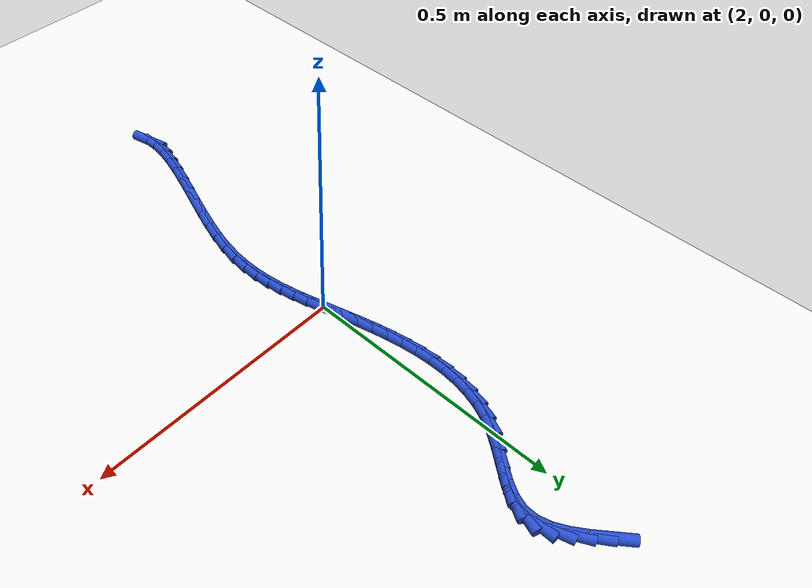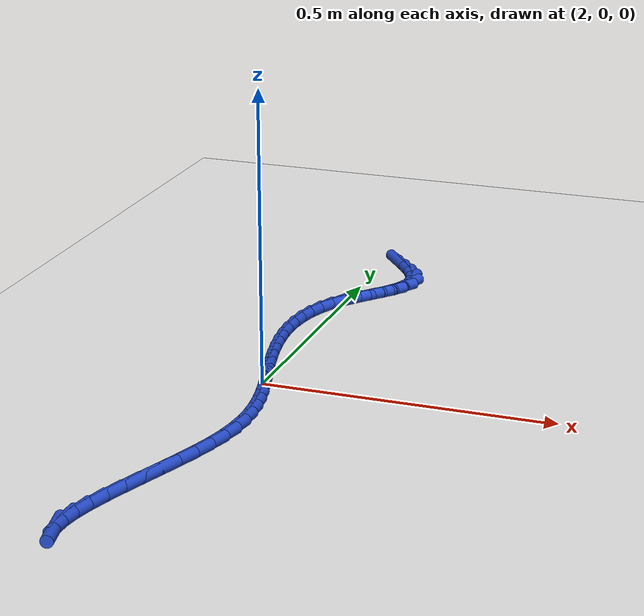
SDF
<sdf version="1.6">
 <world name="default">
  <model name="ground_plane">
   <static>1</static>
   <link name="link">
    <collision name="collision">
     <geometry><plane><normal>0 0 1</normal><size>100 100</size></plane></geometry>
     <surface><friction><ode><mu>100</mu><mu2>50</mu2></ode></friction></surface>
    </collision>
    <visual name="visual">
     <cast_shadows>0</cast_shadows>
     <geometry><plane><normal>0 0 1</normal><size>100 100</size></plane></geometry>
     <material>
      <script><uri>file://media/materials/scripts/gazebo.material</uri><name>Gazebo/WhiteGlow</name></script>
     </material>
    </visual>
   </link>
  </model>
  <model name="line">
   <link name="link_105">
    <pose>2.029555868944978 0.6349782605247166 0.01 0 1.57 -0.9045945338259855</pose>
    <collision name="collision">
     <geometry><cylinder><radius>0.01</radius><length>0.08</length></cylinder></geometry>
    </collision>
    <visual name="visual">
     <material>
      <script><name>Gazebo/Blue</name><uri>file://media/materials/scripts/gazebo.material</uri></script>
     </material>
     <geometry><cylinder><radius>0.01</radius><length>0.08</length></cylinder></geometry>
    </visual>
   </link>
   <link name="link_106">
    <pose>2.049239063145035 0.6099389110316651 0.01 0 1.57 -0.9684501212486784</pose>
    <collision name="collision">
     <geometry><cylinder><radius>0.01</radius><length>0.08</length></cylinder></geometry>
    </collision>
    <visual name="visual">
     <material>
      <script><name>Gazebo/Blue</name><uri>file://media/materials/scripts/gazebo.material</uri></script>
     </material>
     <geometry><cylinder><radius>0.01</radius><length>0.08</length></cylinder></geometry>
    </visual>
   </link>
   <link name="link_107">
    <pose>2.066205257287729 0.5852639215975498 0.01 0 1.57 -1.0895288656745026</pose>
    <collision name="collision">
     <geometry><cylinder><radius>0.01</radius><length>0.08</length></cylinder></geometry>
    </collision>
    <visual name="visual">
     <material>
      <script><name>Gazebo/Blue</name><uri>file://media/materials/scripts/gazebo.material</uri></script>
     </material>
     <geometry><cylinder><radius>0.01</radius><length>0.08</length></cylinder></geometry>
    </visual>
   </link>
   <link name="link_108">
    <pose>2.0789110827623545 0.5609336489370904 0.01 0 1.57 -1.2908236707135303</pose>
    <collision name="collision">
     <geometry><cylinder><radius>0.01</radius><length>0.08</length></cylinder></geometry>
    </collision>
    <visual name="visual">
     <material>
      <script><name>Gazebo/Blue</name><uri>file://media/materials/scripts/gazebo.material</uri></script>
     </material>
     <geometry><cylinder><radius>0.01</radius><length>0.08</length></cylinder></geometry>
    </visual>
   </link>
   <link name="link_109">
    <pose>2.085813170958205 0.5369284497650043 0.01 0 1.57 1.5520579601541524</pose>
    <collision name="collision">
     <geometry><cylinder><radius>0.01</radius><length>0.08</length></cylinder></geometry>
    </collision>
    <visual name="visual">
     <material>
      <script><name>Gazebo/Blue</name><uri>file://media/materials/scripts/gazebo.material</uri></script>
     </material>
     <geometry><cylinder><radius>0.01</radius><length>0.08</length></cylinder></geometry>
    </visual>
   </link>
   <link name="link_110">
    <pose>2.0853690230406627 0.5132286289203156 0.01 0 1.57 1.2250193249825099</pose>
    <collision name="collision">
     <geometry><cylinder><radius>0.01</radius><length>0.08</length></cylinder></geometry>
    </collision>
    <visual name="visual">
     <material>
      <script><name>Gazebo/Blue</name><uri>file://media/materials/scripts/gazebo.material</uri></script>
     </material>
     <geometry><cylinder><radius>0.01</radius><length>0.08</length></cylinder></geometry>
    </visual>
   </link>
   <link name="link_111">
    <pose>2.0769151892579263 0.48976206248242865 0.01 0 1.57 1.0142334690585681</pose>
    <collision name="collision">
     <geometry><cylinder><radius>0.01</radius><length>0.08</length></cylinder></geometry>
    </collision>
    <visual name="visual">
     <material>
      <script><name>Gazebo/Blue</name><uri>file://media/materials/scripts/gazebo.material</uri></script>
     </material>
     <geometry><cylinder><radius>0.01</radius><length>0.08</length></cylinder></geometry>
    </visual>
   </link>
   <link name="link_112">
    <pose>2.0623212136409066 0.4663055522338168 0.01 0 1.57 0.910271087899377</pose>
    <collision name="collision">
     <geometry><cylinder><radius>0.01</radius><length>0.08</length></cylinder></geometry>
    </collision>
    <visual name="visual">
     <material>
      <script><name>Gazebo/Blue</name><uri>file://media/materials/scripts/gazebo.material</uri></script>
     </material>
     <geometry><cylinder><radius>0.01</radius><length>0.08</length></cylinder></geometry>
    </visual>
   </link>
   <link name="link_113">
    <pose>2.0439101368320864 0.4426088522467615 0.01 0 1.57 0.8822090596342763</pose>
    <collision name="collision">
     <geometry><cylinder><radius>0.01</radius><length>0.08</length></cylinder></geometry>
    </collision>
    <visual name="visual">
     <material>
      <script><name>Gazebo/Blue</name><uri>file://media/materials/scripts/gazebo.material</uri></script>
     </material>
     <geometry><cylinder><radius>0.01</radius><length>0.08</length></cylinder></geometry>
    </visual>
   </link>
   <link name="link_114">
    <pose>2.0240049994739477 0.4184217165935443 0.01 0 1.57 0.9176027737818029</pose>
    <collision name="collision">
     <geometry><cylinder><radius>0.01</radius><length>0.08</length></cylinder></geometry>
    </collision>
    <visual name="visual">
     <material>
      <script><name>Gazebo/Blue</name><uri>file://media/materials/scripts/gazebo.material</uri></script>
     </material>
     <geometry><cylinder><radius>0.01</radius><length>0.08</length></cylinder></geometry>
    </visual>
   </link>
   <link name="link_115">
    <pose>2.004928842208973 0.3934938993464466 0.01 0 1.57 1.0167028812262684</pose>
    <collision name="collision">
     <geometry><cylinder><radius>0.01</radius><length>0.08</length></cylinder></geometry>
    </collision>
    <visual name="visual">
     <material>
      <script><name>Gazebo/Blue</name><uri>file://media/materials/scripts/gazebo.material</uri></script>
     </material>
     <geometry><cylinder><radius>0.01</radius><length>0.08</length></cylinder></geometry>
    </visual>
   </link>
   <link name="link_116">
    <pose>1.9889010655422847 0.3675904880156064 0.01 0 1.57 1.144536471753986</pose>
    <collision name="collision">
     <geometry><cylinder><radius>0.01</radius><length>0.08</length></cylinder></geometry>
    </collision>
    <visual name="visual">
     <material>
      <script><name>Gazebo/Blue</name><uri>file://media/materials/scripts/gazebo.material</uri></script>
     </material>
     <geometry><cylinder><radius>0.01</radius><length>0.08</length></cylinder></geometry>
    </visual>
   </link>
   <link name="link_117">
    <pose>1.9766863188185655 0.34069179885441947 0.01 0 1.57 1.26671848785984</pose>
    <collision name="collision">
     <geometry><cylinder><radius>0.01</radius><length>0.08</length></cylinder></geometry>
    </collision>
    <visual name="visual">
     <material>
      <script><name>Gazebo/Blue</name><uri>file://media/materials/scripts/gazebo.material</uri></script>
     </material>
     <geometry><cylinder><radius>0.01</radius><length>0.08</length></cylinder></geometry>
    </visual>
   </link>
   <link name="link_118">
    <pose>1.9679765407939995 0.3129368544009851 0.01 0 1.57 1.3786692697500413</pose>
    <collision name="collision">
     <geometry><cylinder><radius>0.01</radius><length>0.08</length></cylinder></geometry>
    </collision>
    <visual name="visual">
     <material>
      <script><name>Gazebo/Blue</name><uri>file://media/materials/scripts/gazebo.material</uri></script>
     </material>
     <geometry><cylinder><radius>0.01</radius><length>0.08</length></cylinder></geometry>
    </visual>
   </link>
   <link name="link_119">
    <pose>1.9624386681174275 0.2844683762261246 0.01 0 1.57 1.478118484734891</pose>
    <collision name="collision">
     <geometry><cylinder><radius>0.01</radius><length>0.08</length></cylinder></geometry>
    </collision>
    <visual name="visual">
     <material>
      <script><name>Gazebo/Blue</name><uri>file://media/materials/scripts/gazebo.material</uri></script>
     </material>
     <geometry><cylinder><radius>0.01</radius><length>0.08</length></cylinder></geometry>
    </visual>
   </link>
   <link name="link_120">
    <pose>1.9597396374376872 0.25542908590065755 0.01 0 1.57 1.5642382528282959</pose>
    <collision name="collision">
     <geometry><cylinder><radius>0.01</radius><length>0.08</length></cylinder></geometry>
    </collision>
    <visual name="visual">
     <material>
      <script><name>Gazebo/Blue</name><uri>file://media/materials/scripts/gazebo.material</uri></script>
     </material>
     <geometry><cylinder><radius>0.01</radius><length>0.08</length></cylinder></geometry>
    </visual>
   </link>
   <link name="link_121">
    <pose>1.959546385403618 0.2259617049954044 0.01 0 1.57 -1.5043637975934554</pose>
    <collision name="collision">
     <geometry><cylinder><radius>0.01</radius><length>0.08</length></cylinder></geometry>
    </collision>
    <visual name="visual">
     <material>
      <script><name>Gazebo/Blue</name><uri>file://media/materials/scripts/gazebo.material</uri></script>
     </material>
     <geometry><cylinder><radius>0.01</radius><length>0.08</length></cylinder></geometry>
    </visual>
   </link>
   <link name="link_122">
    <pose>1.9615258486640592 0.1962089550811854 0.01 0 1.57 -1.4437352804526955</pose>
    <collision name="collision">
     <geometry><cylinder><radius>0.01</radius><length>0.08</length></cylinder></geometry>
    </collision>
    <visual name="visual">
     <material>
      <script><name>Gazebo/Blue</name><uri>file://media/materials/scripts/gazebo.material</uri></script>
     </material>
     <geometry><cylinder><radius>0.01</radius><length>0.08</length></cylinder></geometry>
    </visual>
   </link>
   <link name="link_123">
    <pose>1.9653449638678493 0.16631355772882037 0.01 0 1.57 -1.3945007054073248</pose>
    <collision name="collision">
     <geometry><cylinder><radius>0.01</radius><length>0.08</length></cylinder></geometry>
    </collision>
    <visual name="visual">
     <material>
      <script><name>Gazebo/Blue</name><uri>file://media/materials/scripts/gazebo.material</uri></script>
     </material>
     <geometry><cylinder><radius>0.01</radius><length>0.08</length></cylinder></geometry>
    </visual>
   </link>
   <link name="link_124">
    <pose>1.9706706676638281 0.13641823450913054 0.01 0 1.57 -1.3557317010805634</pose>
    <collision name="collision">
     <geometry><cylinder><radius>0.01</radius><length>0.08</length></cylinder></geometry>
    </collision>
    <visual name="visual">
     <material>
      <script><name>Gazebo/Blue</name><uri>file://media/materials/scripts/gazebo.material</uri></script>
     </material>
     <geometry><cylinder><radius>0.01</radius><length>0.08</length></cylinder></geometry>
    </visual>
   </link>
   <link name="link_125">
    <pose>1.9771698967008349 0.10666570699293576 0.01 0 1.57 -1.3266821989948816</pose>
    <collision name="collision">
     <geometry><cylinder><radius>0.01</radius><length>0.08</length></cylinder></geometry>
    </collision>
    <visual name="visual">
     <material>
      <script><name>Gazebo/Blue</name><uri>file://media/materials/scripts/gazebo.material</uri></script>
     </material>
     <geometry><cylinder><radius>0.01</radius><length>0.08</length></cylinder></geometry>
    </visual>
   </link>
   <link name="link_126">
    <pose>1.9845095876277083 0.0771986967510559 0.01 0 1.57 -1.306871985185747</pose>
    <collision name="collision">
     <geometry><cylinder><radius>0.01</radius><length>0.08</length></cylinder></geometry>
    </collision>
    <visual name="visual">
     <material>
      <script><name>Gazebo/Blue</name><uri>file://media/materials/scripts/gazebo.material</uri></script>
     </material>
     <geometry><cylinder><radius>0.01</radius><length>0.08</length></cylinder></geometry>
    </visual>
   </link>
   <link name="link_127">
    <pose>1.9923566770932877 0.04815992535431203 0.01 0 1.57 -1.2961454460247632</pose>
    <collision name="collision">
     <geometry><cylinder><radius>0.01</radius><length>0.08</length></cylinder></geometry>
    </collision>
    <visual name="visual">
     <material>
      <script><name>Gazebo/Blue</name><uri>file://media/materials/scripts/gazebo.material</uri></script>
     </material>
     <geometry><cylinder><radius>0.01</radius><length>0.08</length></cylinder></geometry>
    </visual>
   </link>
   <link name="link_128">
    <pose>2.0003781017464113 0.01969211437352409 0.01 0 1.57 -1.2952221472851309</pose>
    <collision name="collision">
     <geometry><cylinder><radius>0.01</radius><length>0.08</length></cylinder></geometry>
    </collision>
    <visual name="visual">
     <material>
      <script><name>Gazebo/Blue</name><uri>file://media/materials/scripts/gazebo.material</uri></script>
     </material>
     <geometry><cylinder><radius>0.01</radius><length>0.08</length></cylinder></geometry>
    </visual>
   </link>
   <link name="link_129">
    <pose>2.0082433706101184 -0.008123098259448243 0.01 0 1.57 -1.3070045715815444</pose>
    <collision name="collision">
     <geometry><cylinder><radius>0.01</radius><length>0.08</length></cylinder></geometry>
    </collision>
    <visual name="visual">
     <material>
      <script><name>Gazebo/Blue</name><uri>file://media/materials/scripts/gazebo.material</uri></script>
     </material>
     <geometry><cylinder><radius>0.01</radius><length>0.08</length></cylinder></geometry>
    </visual>
   </link>
   <link name="link_130">
    <pose>2.015633895688873 -0.03548672300056993 0.01 0 1.57 -1.3326836642399318</pose>
    <collision name="collision">
     <geometry><cylinder><radius>0.01</radius><length>0.08</length></cylinder></geometry>
    </collision>
    <visual name="visual">
     <material>
      <script><name>Gazebo/Blue</name><uri>file://media/materials/scripts/gazebo.material</uri></script>
     </material>
     <geometry><cylinder><radius>0.01</radius><length>0.08</length></cylinder></geometry>
    </visual>
   </link>
   <link name="link_131">
    <pose>2.022234529417764 -0.06268146682653823 0.01 0 1.57 -1.3722081484722966</pose>
    <collision name="collision">
     <geometry><cylinder><radius>0.01</radius><length>0.08</length></cylinder></geometry>
    </collision>
    <visual name="visual">
     <material>
      <script><name>Gazebo/Blue</name><uri>file://media/materials/scripts/gazebo.material</uri></script>
     </material>
     <geometry><cylinder><radius>0.01</radius><length>0.08</length></cylinder></geometry>
    </visual>
   </link>
   <link name="link_132">
    <pose>2.0277301245723054 -0.0899900447978704 0.01 0 1.57 -1.4247442892181195</pose>
    <collision name="collision">
     <geometry><cylinder><radius>0.01</radius><length>0.08</length></cylinder></geometry>
    </collision>
    <visual name="visual">
     <material>
      <script><name>Gazebo/Blue</name><uri>file://media/materials/scripts/gazebo.material</uri></script>
     </material>
     <geometry><cylinder><radius>0.01</radius><length>0.08</length></cylinder></geometry>
    </visual>
   </link>
   <link name="link_133">
    <pose>2.0318055339280168 -0.11769517197508456 0.01 0 1.57 -1.488539984602559</pose>
    <collision name="collision">
     <geometry><cylinder><radius>0.01</radius><length>0.08</length></cylinder></geometry>
    </collision>
    <visual name="visual">
     <material>
      <script><name>Gazebo/Blue</name><uri>file://media/materials/scripts/gazebo.material</uri></script>
     </material>
     <geometry><cylinder><radius>0.01</radius><length>0.08</length></cylinder></geometry>
    </visual>
   </link>
   <link name="link_134">
    <pose>2.034145610260412 -0.1460795634186964 0.01 0 1.57 -1.560928439314883</pose>
    <collision name="collision">
     <geometry><cylinder><radius>0.01</radius><length>0.08</length></cylinder></geometry>
    </collision>
    <visual name="visual">
     <material>
      <script><name>Gazebo/Blue</name><uri>file://media/materials/scripts/gazebo.material</uri></script>
     </material>
     <geometry><cylinder><radius>0.01</radius><length>0.08</length></cylinder></geometry>
    </visual>
   </link>
   <link name="link_135">
    <pose>2.0344352063450093 -0.17542593418922406 0.01 0 1.57 1.503036244324986</pose>
    <collision name="collision">
     <geometry><cylinder><radius>0.01</radius><length>0.08</length></cylinder></geometry>
    </collision>
    <visual name="visual">
     <material>
      <script><name>Gazebo/Blue</name><uri>file://media/materials/scripts/gazebo.material</uri></script>
     </material>
     <geometry><cylinder><radius>0.01</radius><length>0.08</length></cylinder></geometry>
    </visual>
   </link>
   <link name="link_136">
    <pose>2.032359174957325 -0.20601699934718476 0.01 0 1.57 1.4237632579831492</pose>
    <collision name="collision">
     <geometry><cylinder><radius>0.01</radius><length>0.08</length></cylinder></geometry>
    </collision>
    <visual name="visual">
     <material>
      <script><name>Gazebo/Blue</name><uri>file://media/materials/scripts/gazebo.material</uri></script>
     </material>
     <geometry><cylinder><radius>0.01</radius><length>0.08</length></cylinder></geometry>
    </visual>
   </link>
   <link name="link_137">
    <pose>2.027602368872874 -0.2381354739530958 0.01 0 1.57 1.3489469850679976</pose>
    <collision name="collision">
     <geometry><cylinder><radius>0.01</radius><length>0.08</length></cylinder></geometry>
    </collision>
    <visual name="visual">
     <material>
      <script><name>Gazebo/Blue</name><uri>file://media/materials/scripts/gazebo.material</uri></script>
     </material>
     <geometry><cylinder><radius>0.01</radius><length>0.08</length></cylinder></geometry>
    </visual>
   </link>
   <link name="link_138">
    <pose>2.0199700666515366 -0.271972293332029 0.01 0 1.57 1.2934141994097692</pose>
    <collision name="collision">
     <geometry><cylinder><radius>0.01</radius><length>0.08</length></cylinder></geometry>
    </collision>
    <visual name="visual">
     <material>
      <script><name>Gazebo/Blue</name><uri>file://media/materials/scripts/gazebo.material</uri></script>
     </material>
     <geometry><cylinder><radius>0.01</radius><length>0.08</length></cylinder></geometry>
    </visual>
   </link>
   <link name="link_139">
    <pose>2.009937803626688 -0.30720757206018207 0.01 0 1.57 1.257057970445087</pose>
    <collision name="collision">
     <geometry><cylinder><radius>0.01</radius><length>0.08</length></cylinder></geometry>
    </collision>
    <visual name="visual">
     <material>
      <script><name>Gazebo/Blue</name><uri>file://media/materials/scripts/gazebo.material</uri></script>
     </material>
     <geometry><cylinder><radius>0.01</radius><length>0.08</length></cylinder></geometry>
    </visual>
   </link>
   <link name="link_140">
    <pose>1.9982129379179807 -0.34334474632126977 0.01 0 1.57 1.2360714616241941</pose>
    <collision name="collision">
     <geometry><cylinder><radius>0.01</radius><length>0.08</length></cylinder></geometry>
    </collision>
    <visual name="visual">
     <material>
      <script><name>Gazebo/Blue</name><uri>file://media/materials/scripts/gazebo.material</uri></script>
     </material>
     <geometry><cylinder><radius>0.01</radius><length>0.08</length></cylinder></geometry>
    </visual>
   </link>
   <link name="link_141">
    <pose>1.9855030505670301 -0.3798870824041684 0.01 0 1.57 1.2285220283738005</pose>
    <collision name="collision">
     <geometry><cylinder><radius>0.01</radius><length>0.08</length></cylinder></geometry>
    </collision>
    <visual name="visual">
     <material>
      <script><name>Gazebo/Blue</name><uri>file://media/materials/scripts/gazebo.material</uri></script>
     </material>
     <geometry><cylinder><radius>0.01</radius><length>0.08</length></cylinder></geometry>
    </visual>
   </link>
   <link name="link_142">
    <pose>1.9725157226154524 -0.4163378465977574 0.01 0 1.57 1.233989184080504</pose>
    <collision name="collision">
     <geometry><cylinder><radius>0.01</radius><length>0.08</length></cylinder></geometry>
    </collision>
    <visual name="visual">
     <material>
      <script><name>Gazebo/Blue</name><uri>file://media/materials/scripts/gazebo.material</uri></script>
     </material>
     <geometry><cylinder><radius>0.01</radius><length>0.08</length></cylinder></geometry>
    </visual>
   </link>
   <link name="link_143">
    <pose>1.9599585351048636 -0.4522003051909152 0.01 0 1.57 1.2535296599978092</pose>
    <collision name="collision">
     <geometry><cylinder><radius>0.01</radius><length>0.08</length></cylinder></geometry>
    </collision>
    <visual name="visual">
     <material>
      <script><name>Gazebo/Blue</name><uri>file://media/materials/scripts/gazebo.material</uri></script>
     </material>
     <geometry><cylinder><radius>0.01</radius><length>0.08</length></cylinder></geometry>
    </visual>
   </link>
   <link name="link_144">
    <pose>1.9485390690768802 -0.4869777244725203 0.01 0 1.57 1.290000420695093</pose>
    <collision name="collision">
     <geometry><cylinder><radius>0.01</radius><length>0.08</length></cylinder></geometry>
    </collision>
    <visual name="visual">
     <material>
      <script><name>Gazebo/Blue</name><uri>file://media/materials/scripts/gazebo.material</uri></script>
     </material>
     <geometry><cylinder><radius>0.01</radius><length>0.08</length></cylinder></geometry>
    </visual>
   </link>
   <link name="link_145">
    <pose>1.938964905573118 -0.5201733707314512 0.01 0 1.57 1.3488725445542993</pose>
    <collision name="collision">
     <geometry><cylinder><radius>0.01</radius><length>0.08</length></cylinder></geometry>
    </collision>
    <visual name="visual">
     <material>
      <script><name>Gazebo/Blue</name><uri>file://media/materials/scripts/gazebo.material</uri></script>
     </material>
     <geometry><cylinder><radius>0.01</radius><length>0.08</length></cylinder></geometry>
    </visual>
   </link>
   <link name="link_146">
    <pose>1.931943625635192 -0.5512905102565859 0.01 0 1.57 1.4397863243759739</pose>
    <collision name="collision">
     <geometry><cylinder><radius>0.01</radius><length>0.08</length></cylinder></geometry>
    </collision>
    <visual name="visual">
     <material>
      <script><name>Gazebo/Blue</name><uri>file://media/materials/scripts/gazebo.material</uri></script>
     </material>
     <geometry><cylinder><radius>0.01</radius><length>0.08</length></cylinder></geometry>
    </visual>
   </link>
   <link name="link_147">
    <pose>1.9281828103047194 -0.5798324093368032 0.01 0 1.57 -1.5626602311219218</pose>
    <collision name="collision">
     <geometry><cylinder><radius>0.01</radius><length>0.08</length></cylinder></geometry>
    </collision>
    <visual name="visual">
     <material>
      <script><name>Gazebo/Blue</name><uri>file://media/materials/scripts/gazebo.material</uri></script>
     </material>
     <geometry><cylinder><radius>0.01</radius><length>0.08</length></cylinder></geometry>
    </visual>
   </link>
   <link name="link_148">
    <pose>1.9283900406233159 -0.6053023342609817 0.01 0 1.57 -1.351434799450583</pose>
    <collision name="collision">
     <geometry><cylinder><radius>0.01</radius><length>0.08</length></cylinder></geometry>
    </collision>
    <visual name="visual">
     <material>
      <script><name>Gazebo/Blue</name><uri>file://media/materials/scripts/gazebo.material</uri></script>
     </material>
     <geometry><cylinder><radius>0.01</radius><length>0.08</length></cylinder></geometry>
    </visual>
   </link>
  </model>
 </world>
</sdf>
